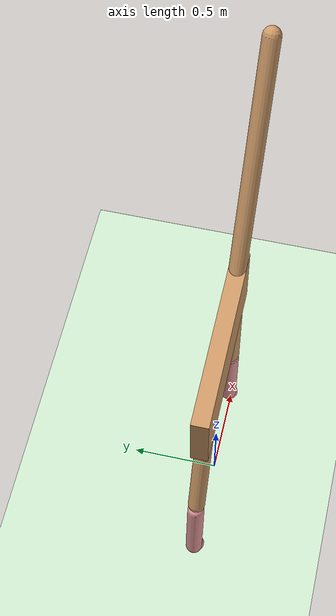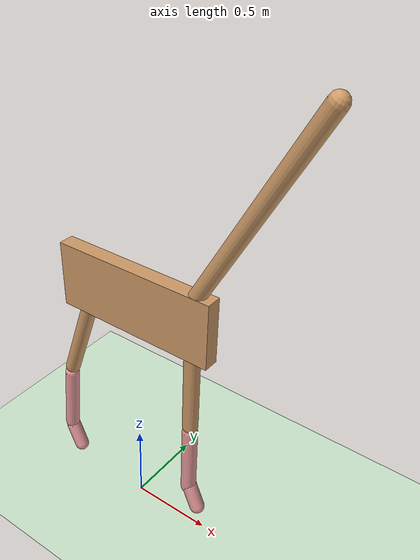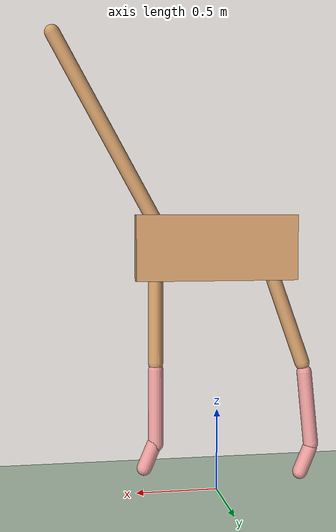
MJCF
<mujoco model="cheetah">
  <compiler angle="radian" coordinate="local" inertiafromgeom="true" />
  <default>
    <joint armature=".1" damping=".01" limited="true" solimplimit="0 .8 .03" solreflimit=".02 1" stiffness="8"/>
    <geom conaffinity="0" condim="3" contype="1" friction=".4 .1 .1" rgba="0.8 0.6 .4 1" solimp="0.0 0.8 0.01" solref="0.02 1"/>
    <motor ctrllimited="true" ctrlrange="-1 1"/>
  </default>
  <size nstack="300000" nuser_geom="1"/>
  <option gravity="0 0 -9.81" timestep="0.01"/>
  <asset>
    <texture builtin="gradient" height="100" rgb1="1 1 1" rgb2="0 0 0" type="skybox" width="100"/>
    <texture builtin="flat" height="1278" mark="cross" markrgb="1 1 1" name="texgeom" random="0.01" rgb1="0.8 0.6 0.4" rgb2="0.8 0.6 0.4" type="cube" width="127"/>
    <texture builtin="checker" height="100" name="texplane" rgb1="0.8 0.8 0.8" rgb2="0.8 0.8 0.8" type="2d" width="100"/>
    <material name="MatPlane" reflectance="0.5" shininess="0" specular="1" texrepeat="60 60" texture="texplane"/>
    <material name="geom" texture="texgeom" texuniform="true"/>
  </asset>
  <worldbody>
    <light cutoff="100" diffuse="1 1 1" dir="-0 0 -1.3" directional="true" exponent="1" pos="0 0 1.3" specular=".1 .1 .1"/>
    <geom conaffinity="1" condim="3" material="MatPlane" name="floor" pos="0 0 0" rgba="0.8 0.9 0.8 1" size="40 40 40" type="plane"/>
    <body name="torso" pos="0 0 1.5">
      <camera name="track" mode="trackcom" pos="0 -5 0.3" xyaxes="1 0 0 0 0 1"/>
      <joint armature="0" axis="1 0 0" damping="0" limited="false" name="rootx" pos="0 0 0" stiffness="0" type="slide"/>
      <joint armature="0" axis="0 0 1" damping="0" limited="false" name="rootz" pos="0 0 0" stiffness="0" type="slide"/>
      <joint armature="0" axis="0 1 0" damping="0" limited="false" name="rooty" pos="0 0 0" stiffness="0" type="hinge"/>
      <geom  name="torso" size="0.5 0.046 0.2" type="box" mass='8'/>

      <geom axisangle="0 1 0 .5" name="head" pos=".65 0 .65" size="0.046 .7" type="capsule" mass='3'/>
      <body name="bthigh" pos="-.45 0 -0.46">
        <joint axis="0 1 0" damping="6" name="bthigh" pos="0 0 0.45" range="-0.5 0.3" stiffness="240" type="hinge"/>
        <geom axisangle="0 1 0 -2.8" name="bthigh" pos="0 0 0" size="0.046 .28" type="capsule" mass='4'/>
        <body name="bshin" pos="-.13 0 -.55">
          <joint axis="0 1 0" damping="4.5" name="bshin" pos="0 0 0.30" range="-.0 2" stiffness="180" type="hinge"/>
          <geom axisangle="0 1 0 0.1" name="bshin" pos="0 0 0" rgba="0.9 0.6 0.6 1" size="0.046 .23" type="capsule" mass='2'/>
          <body name="bfoot" pos=".015 0 -.33">
            <joint axis="0 1 0" damping="3" name="bfoot" pos="-0.1 0 0.04" range="-.4 .785" stiffness="120" type="hinge"/>
            <geom axisangle="0 1 0 -.4" name="bfoot" pos=".0 0 0" rgba="0.9 0.6 0.6 1" size="0.046 .08" type="capsule" mass='0.5'/>
          </body>
        </body>
      </body>
      <body name="fthigh" pos=".38 0 -0.45">
        <joint axis="0 1 0" damping="4.5" name="fthigh" pos="0 0 0.4" range="-.5 .3" stiffness="180" type="hinge"/>
        <geom axisangle="0 1 0 .0" name="fthigh" pos="-.00 0 -.0" size="0.046 .25" type="capsule" mass='4'/>
        <body name="fshin" pos="-.0 0 -.52">
          <joint axis="0 1 0" damping="3" name="fshin" pos="0 0 0.3" range="-0 2" stiffness="120" type="hinge"/>
          <geom axisangle="0 1 0 -.0" name="fshin" pos=".0 0 .0" rgba="0.9 0.6 0.6 1" size="0.046 .23" type="capsule" mass='2'/>
          <body name="ffoot" pos=".04 0 -.3">
            <joint axis="0 1 0" damping="1.5" name="ffoot" pos="0 0 0.1" range="-.7 .0" stiffness="60" type="hinge"/>
            <geom axisangle="0 1 0 -0.4" name="ffoot" pos=".0 0 -.0" rgba="0.9 0.6 0.6 1" size="0.046 .08" type="capsule" mass='0.5'/>
          </body>
        </body>
      </body>
    </body>
  </worldbody>
  <actuator>
    <motor gear="120" joint="bthigh" name="bthigh"/>
    <motor gear="90" joint="bshin" name="bshin"/>
    <motor gear="30" joint="bfoot" name="bfoot"/>
    <motor gear="120" joint="fthigh" name="fthigh"/>
    <motor gear="60" joint="fshin" name="fshin"/>
    <motor gear="30" joint="ffoot" name="ffoot"/>
  </actuator>
</mujoco>
